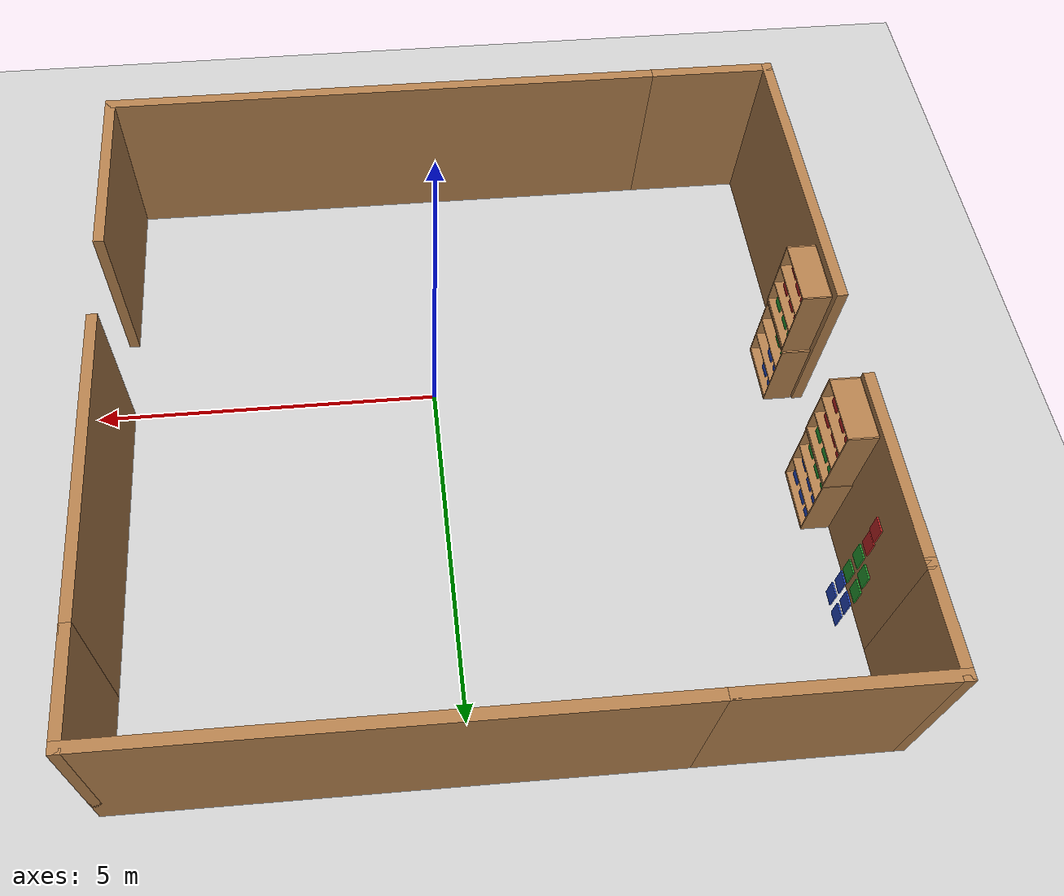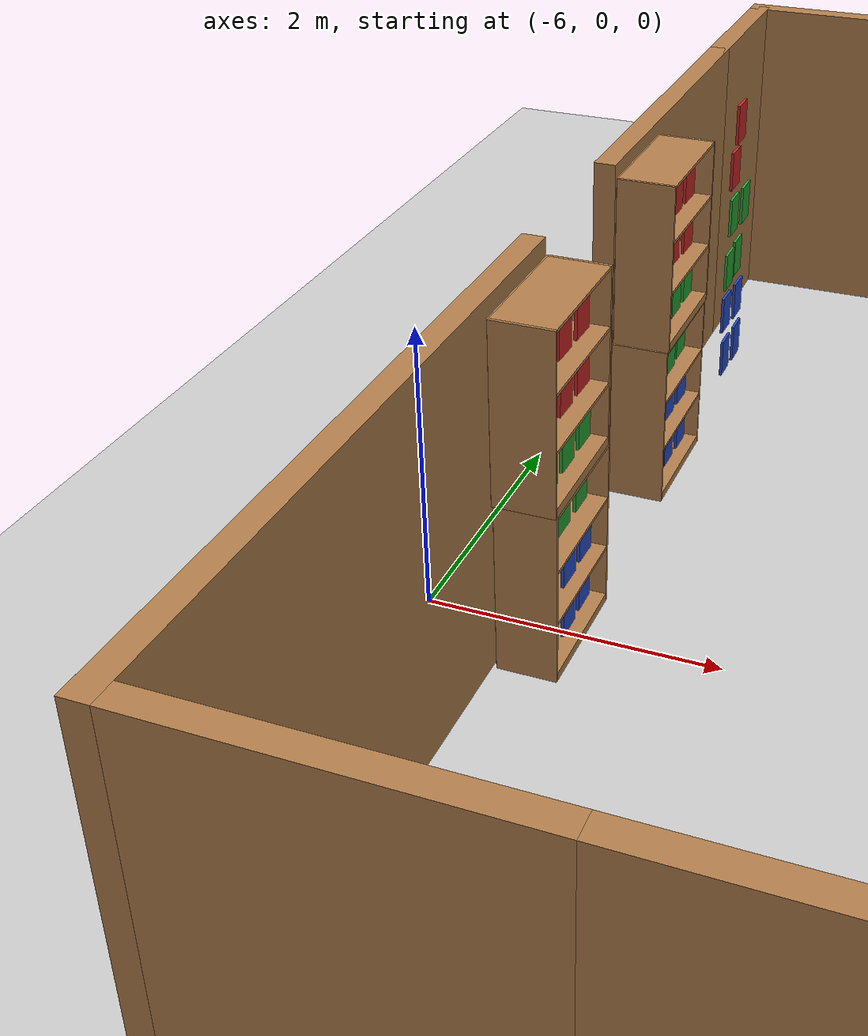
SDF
<sdf version="1.6">
 <world name="default">
  <model name="ground_plane">
   <static>1</static>
   <link name="link">
    <collision name="collision">
     <geometry><plane><normal>0 0 1</normal><size>100 100</size></plane></geometry>
     <surface><friction><ode><mu>100</mu><mu2>50</mu2></ode></friction></surface>
    </collision>
    <visual name="visual">
     <cast_shadows>0</cast_shadows>
     <geometry><plane><normal>0 0 1</normal><size>100 100</size></plane></geometry>
     <material>
      <script><uri>file://media/materials/scripts/gazebo.material</uri><name>Gazebo/Grey</name></script>
     </material>
    </visual>
   </link>
  </model>
  <model name="shopping_mart_box">
   <pose>-0.44063 0.87202 0 0 -0 0</pose>
   <link name="Wall_11">
    <collision name="Wall_11_Collision">
     <geometry><box><size>2 0.15 2.5</size></box></geometry>
     <pose>0 0 1.25 0 -0 0</pose>
    </collision>
    <visual name="Wall_11_Visual">
     <pose>0 0 1.25 0 -0 0</pose>
     <geometry><box><size>2 0.15 2.5</size></box></geometry>
     <material>
      <script><uri>file://media/materials/scripts/gazebo.material</uri><name>Gazebo/Wood</name></script>
      <ambient>1 1 1 1</ambient>
     </material>
    </visual>
    <pose>-4.05 -4.85 0 0 -0 3.14159</pose>
   </link>
   <link name="Wall_12">
    <collision name="Wall_12_Collision">
     <geometry><box><size>4.5 0.15 2.5</size></box></geometry>
     <pose>0 0 1.25 0 -0 0</pose>
    </collision>
    <visual name="Wall_12_Visual">
     <pose>0 0 1.25 0 -0 0</pose>
     <geometry><box><size>4.5 0.15 2.5</size></box></geometry>
     <material>
      <script><uri>file://media/materials/scripts/gazebo.material</uri><name>Gazebo/Wood</name></script>
      <ambient>1 1 1 1</ambient>
     </material>
    </visual>
    <pose>-4.975 -2.675 0 0 -0 1.5708</pose>
   </link>
   <link name="Wall_15">
    <collision name="Wall_15_Collision">
     <geometry><box><size>2.75 0.15 2.5</size></box></geometry>
     <pose>0 0 1.25 0 -0 0</pose>
    </collision>
    <visual name="Wall_15_Visual">
     <pose>0 0 1.25 0 -0 0</pose>
     <geometry><box><size>2.75 0.15 2.5</size></box></geometry>
     <material>
      <script><uri>file://media/materials/scripts/gazebo.material</uri><name>Gazebo/Wood</name></script>
      <ambient>1 1 1 1</ambient>
     </material>
    </visual>
    <pose>-4.975 2.2 0 0 0 -1.5708</pose>
   </link>
   <link name="Wall_17">
    <collision name="Wall_17_Collision">
     <geometry><box><size>1.5 0.15 2.5</size></box></geometry>
     <pose>0 0 1.25 0 -0 0</pose>
    </collision>
    <visual name="Wall_17_Visual">
     <pose>0 0 1.25 0 -0 0</pose>
     <geometry><box><size>1.5 0.15 2.5</size></box></geometry>
     <material>
      <script><uri>file://media/materials/scripts/gazebo.material</uri><name>Gazebo/Wood</name></script>
      <ambient>1 1 1 1</ambient>
     </material>
    </visual>
    <pose>-4.975 4.175 0 0 -0 1.5708</pose>
   </link>
   <link name="Wall_21">
    <collision name="Wall_21_Collision">
     <geometry><box><size>2.75 0.15 2.5</size></box></geometry>
     <pose>0 0 1.25 0 -0 0</pose>
    </collision>
    <visual name="Wall_21_Visual">
     <pose>0 0 1.25 0 -0 0</pose>
     <geometry><box><size>2.75 0.15 2.5</size></box></geometry>
     <material>
      <script><uri>file://media/materials/scripts/gazebo.material</uri><name>Gazebo/Wood</name></script>
      <ambient>1 1 1 1</ambient>
     </material>
    </visual>
    <pose>-3.675 4.85 0 0 -0 0</pose>
   </link>
   <link name="Wall_22">
    <collision name="Wall_22_Collision">
     <geometry><box><size>7.5 0.15 2.5</size></box></geometry>
     <pose>0 0 1.25 0 -0 0</pose>
    </collision>
    <visual name="Wall_22_Visual">
     <pose>0 0 1.25 0 -0 0</pose>
     <geometry><box><size>7.5 0.15 2.5</size></box></geometry>
     <material>
      <script><uri>file://media/materials/scripts/gazebo.material</uri><name>Gazebo/Wood</name></script>
      <ambient>1 1 1 1</ambient>
     </material>
    </visual>
    <pose>1.3 4.85 0 0 -0 0</pose>
   </link>
   <link name="Wall_23">
    <collision name="Wall_23_Collision">
     <geometry><box><size>1.5 0.15 2.5</size></box></geometry>
     <pose>0 0 1.25 0 -0 0</pose>
    </collision>
    <visual name="Wall_23_Visual">
     <pose>0 0 1.25 0 -0 0</pose>
     <geometry><box><size>1.5 0.15 2.5</size></box></geometry>
     <material>
      <script><uri>file://media/materials/scripts/gazebo.material</uri><name>Gazebo/Wood</name></script>
      <ambient>1 1 1 1</ambient>
     </material>
    </visual>
    <pose>4.975 4.175 0 0 0 -1.5708</pose>
   </link>
   <link name="Wall_29">
    <collision name="Wall_29_Collision">
     <geometry><box><size>4.5 0.15 2.5</size></box></geometry>
     <pose>0 0 1.25 0 -0 0</pose>
    </collision>
    <visual name="Wall_29_Visual">
     <pose>0 0 1.25 0 -0 0</pose>
     <geometry><box><size>4.5 0.15 2.5</size></box></geometry>
     <material>
      <script><uri>file://media/materials/scripts/gazebo.material</uri><name>Gazebo/Wood</name></script>
      <ambient>1 1 1 1</ambient>
     </material>
    </visual>
    <pose>4.975 1.325 0 0 0 -1.5708</pose>
   </link>
   <link name="Wall_31">
    <collision name="Wall_31_Collision">
     <geometry><box><size>2.75 0.15 2.5</size></box></geometry>
     <pose>0 0 1.25 0 -0 0</pose>
    </collision>
    <visual name="Wall_31_Visual">
     <pose>0 0 1.25 0 -0 0</pose>
     <geometry><box><size>2.75 0.15 2.5</size></box></geometry>
     <material>
      <script><uri>file://media/materials/scripts/gazebo.material</uri><name>Gazebo/Wood</name></script>
      <ambient>1 1 1 1</ambient>
     </material>
    </visual>
    <pose>4.975 -3.55 0 0 -0 1.5708</pose>
   </link>
   <link name="Wall_6">
    <collision name="Wall_6_Collision">
     <geometry><box><size>8.25 0.15 2.5</size></box></geometry>
     <pose>0 0 1.25 0 -0 0</pose>
    </collision>
    <visual name="Wall_6_Visual">
     <pose>0 0 1.25 0 -0 0</pose>
     <geometry><box><size>8.25 0.15 2.5</size></box></geometry>
     <material>
      <script><uri>file://media/materials/scripts/gazebo.material</uri><name>Gazebo/Wood</name></script>
      <ambient>1 1 1 1</ambient>
     </material>
    </visual>
    <pose>0.925 -4.85 0 0 -0 0</pose>
   </link>
   <static>1</static>
  </model>
  <model name="bookshelf_0_clone_0">
   <static>1</static>
   <link name="link">
    <inertial><mass>1</mass></inertial>
    <collision name="back">
     <pose>0 0.005 0.6 0 -0 0</pose>
     <geometry><box><size>0.9 0.01 1.2</size></box></geometry>
    </collision>
    <visual name="visual1">
     <pose>0 0.005 0.6 0 -0 0</pose>
     <geometry><box><size>0.9 0.01 1.2</size></box></geometry>
     <material>
      <script><uri>file://media/materials/scripts/gazebo.material</uri><name>Gazebo/Wood</name></script>
     </material>
    </visual>
    <collision name="left_side">
     <pose>0.45 -0.195 0.6 0 -0 0</pose>
     <geometry><box><size>0.02 0.4 1.2</size></box></geometry>
    </collision>
    <visual name="visual2">
     <pose>0.45 -0.195 0.6 0 -0 0</pose>
     <geometry><box><size>0.02 0.4 1.2</size></box></geometry>
     <material>
      <script><uri>file://media/materials/scripts/gazebo.material</uri><name>Gazebo/Wood</name></script>
     </material>
    </visual>
    <collision name="right_side">
     <pose>-0.45 -0.195 0.6 0 -0 0</pose>
     <geometry><box><size>0.02 0.4 1.2</size></box></geometry>
    </collision>
    <visual name="visual3">
     <pose>-0.45 -0.195 0.6 0 -0 0</pose>
     <geometry><box><size>0.02 0.4 1.2</size></box></geometry>
     <material>
      <script><uri>file://media/materials/scripts/gazebo.material</uri><name>Gazebo/Wood</name></script>
     </material>
    </visual>
    <collision name="bottom">
     <pose>0 -0.195 0.03 0 -0 0</pose>
     <geometry><box><size>0.88 0.4 0.06</size></box></geometry>
    </collision>
    <visual name="visual4">
     <pose>0 -0.195 0.03 0 -0 0</pose>
     <geometry><box><size>0.88 0.4 0.06</size></box></geometry>
     <material>
      <script><uri>file://media/materials/scripts/gazebo.material</uri><name>Gazebo/Wood</name></script>
     </material>
    </visual>
    <collision name="top">
     <pose>0 -0.195 1.19 0 -0 0</pose>
     <geometry><box><size>0.88 0.4 0.02</size></box></geometry>
    </collision>
    <visual name="visual5">
     <pose>0 -0.195 1.19 0 -0 0</pose>
     <geometry><box><size>0.88 0.4 0.02</size></box></geometry>
     <material>
      <script><uri>file://media/materials/scripts/gazebo.material</uri><name>Gazebo/Wood</name></script>
     </material>
    </visual>
    <collision name="low_shelf">
     <pose>0 -0.195 0.43 0 -0 0</pose>
     <geometry><box><size>0.88 0.4 0.02</size></box></geometry>
    </collision>
    <visual name="visual6">
     <pose>0 -0.195 0.43 0 -0 0</pose>
     <geometry><box><size>0.88 0.4 0.02</size></box></geometry>
     <material>
      <script><uri>file://media/materials/scripts/gazebo.material</uri><name>Gazebo/Wood</name></script>
     </material>
    </visual>
    <collision name="high_shelf">
     <pose>0 -0.195 0.8 0 -0 0</pose>
     <geometry><box><size>0.88 0.4 0.02</size></box></geometry>
    </collision>
    <visual name="visual7">
     <pose>0 -0.195 0.8 0 -0 0</pose>
     <geometry><box><size>0.88 0.4 0.02</size></box></geometry>
     <material>
      <script><uri>file://media/materials/scripts/gazebo.material</uri><name>Gazebo/Wood</name></script>
     </material>
    </visual>
   </link>
   <pose>-5.30935 -0.025093 0 0 -0 1.5697</pose>
  </model>
  <model name="bookshelf_0_clone_0_clone">
   <static>1</static>
   <link name="link">
    <inertial><mass>1</mass></inertial>
    <collision name="back">
     <pose>0 0.005 0.6 0 -0 0</pose>
     <geometry><box><size>0.9 0.01 1.2</size></box></geometry>
    </collision>
    <visual name="visual1">
     <pose>0 0.005 0.6 0 -0 0</pose>
     <geometry><box><size>0.9 0.01 1.2</size></box></geometry>
     <material>
      <script><uri>file://media/materials/scripts/gazebo.material</uri><name>Gazebo/Wood</name></script>
     </material>
    </visual>
    <collision name="left_side">
     <pose>0.45 -0.195 0.6 0 -0 0</pose>
     <geometry><box><size>0.02 0.4 1.2</size></box></geometry>
    </collision>
    <visual name="visual2">
     <pose>0.45 -0.195 0.6 0 -0 0</pose>
     <geometry><box><size>0.02 0.4 1.2</size></box></geometry>
     <material>
      <script><uri>file://media/materials/scripts/gazebo.material</uri><name>Gazebo/Wood</name></script>
     </material>
    </visual>
    <collision name="right_side">
     <pose>-0.45 -0.195 0.6 0 -0 0</pose>
     <geometry><box><size>0.02 0.4 1.2</size></box></geometry>
    </collision>
    <visual name="visual3">
     <pose>-0.45 -0.195 0.6 0 -0 0</pose>
     <geometry><box><size>0.02 0.4 1.2</size></box></geometry>
     <material>
      <script><uri>file://media/materials/scripts/gazebo.material</uri><name>Gazebo/Wood</name></script>
     </material>
    </visual>
    <collision name="bottom">
     <pose>0 -0.195 0.03 0 -0 0</pose>
     <geometry><box><size>0.88 0.4 0.06</size></box></geometry>
    </collision>
    <visual name="visual4">
     <pose>0 -0.195 0.03 0 -0 0</pose>
     <geometry><box><size>0.88 0.4 0.06</size></box></geometry>
     <material>
      <script><uri>file://media/materials/scripts/gazebo.material</uri><name>Gazebo/Wood</name></script>
     </material>
    </visual>
    <collision name="top">
     <pose>0 -0.195 1.19 0 -0 0</pose>
     <geometry><box><size>0.88 0.4 0.02</size></box></geometry>
    </collision>
    <visual name="visual5">
     <pose>0 -0.195 1.19 0 -0 0</pose>
     <geometry><box><size>0.88 0.4 0.02</size></box></geometry>
     <material>
      <script><uri>file://media/materials/scripts/gazebo.material</uri><name>Gazebo/Wood</name></script>
     </material>
    </visual>
    <collision name="low_shelf">
     <pose>0 -0.195 0.43 0 -0 0</pose>
     <geometry><box><size>0.88 0.4 0.02</size></box></geometry>
    </collision>
    <visual name="visual6">
     <pose>0 -0.195 0.43 0 -0 0</pose>
     <geometry><box><size>0.88 0.4 0.02</size></box></geometry>
     <material>
      <script><uri>file://media/materials/scripts/gazebo.material</uri><name>Gazebo/Wood</name></script>
     </material>
    </visual>
    <collision name="high_shelf">
     <pose>0 -0.195 0.8 0 -0 0</pose>
     <geometry><box><size>0.88 0.4 0.02</size></box></geometry>
    </collision>
    <visual name="visual7">
     <pose>0 -0.195 0.8 0 -0 0</pose>
     <geometry><box><size>0.88 0.4 0.02</size></box></geometry>
     <material>
      <script><uri>file://media/materials/scripts/gazebo.material</uri><name>Gazebo/Wood</name></script>
     </material>
    </visual>
   </link>
   <pose>-5.33454 2.15943 0 0 -0 1.5697</pose>
  </model>
  <model name="bookshelf_0_clone_0_clone_1_clone_0">
   <static>1</static>
   <link name="link">
    <inertial><mass>1</mass></inertial>
    <collision name="back">
     <pose>0 0.005 0.6 0 -0 0</pose>
     <geometry><box><size>0.9 0.01 1.2</size></box></geometry>
    </collision>
    <visual name="visual1">
     <pose>0 0.005 0.6 0 -0 0</pose>
     <geometry><box><size>0.9 0.01 1.2</size></box></geometry>
     <material>
      <script><uri>file://media/materials/scripts/gazebo.material</uri><name>Gazebo/Wood</name></script>
     </material>
    </visual>
    <collision name="left_side">
     <pose>0.45 -0.195 0.6 0 -0 0</pose>
     <geometry><box><size>0.02 0.4 1.2</size></box></geometry>
    </collision>
    <visual name="visual2">
     <pose>0.45 -0.195 0.6 0 -0 0</pose>
     <geometry><box><size>0.02 0.4 1.2</size></box></geometry>
     <material>
      <script><uri>file://media/materials/scripts/gazebo.material</uri><name>Gazebo/Wood</name></script>
     </material>
    </visual>
    <collision name="right_side">
     <pose>-0.45 -0.195 0.6 0 -0 0</pose>
     <geometry><box><size>0.02 0.4 1.2</size></box></geometry>
    </collision>
    <visual name="visual3">
     <pose>-0.45 -0.195 0.6 0 -0 0</pose>
     <geometry><box><size>0.02 0.4 1.2</size></box></geometry>
     <material>
      <script><uri>file://media/materials/scripts/gazebo.material</uri><name>Gazebo/Wood</name></script>
     </material>
    </visual>
    <collision name="bottom">
     <pose>0 -0.195 0.03 0 -0 0</pose>
     <geometry><box><size>0.88 0.4 0.06</size></box></geometry>
    </collision>
    <visual name="visual4">
     <pose>0 -0.195 0.03 0 -0 0</pose>
     <geometry><box><size>0.88 0.4 0.06</size></box></geometry>
     <material>
      <script><uri>file://media/materials/scripts/gazebo.material</uri><name>Gazebo/Wood</name></script>
     </material>
    </visual>
    <collision name="top">
     <pose>0 -0.195 1.19 0 -0 0</pose>
     <geometry><box><size>0.88 0.4 0.02</size></box></geometry>
    </collision>
    <visual name="visual5">
     <pose>0 -0.195 1.19 0 -0 0</pose>
     <geometry><box><size>0.88 0.4 0.02</size></box></geometry>
     <material>
      <script><uri>file://media/materials/scripts/gazebo.material</uri><name>Gazebo/Wood</name></script>
     </material>
    </visual>
    <collision name="low_shelf">
     <pose>0 -0.195 0.43 0 -0 0</pose>
     <geometry><box><size>0.88 0.4 0.02</size></box></geometry>
    </collision>
    <visual name="visual6">
     <pose>0 -0.195 0.43 0 -0 0</pose>
     <geometry><box><size>0.88 0.4 0.02</size></box></geometry>
     <material>
      <script><uri>file://media/materials/scripts/gazebo.material</uri><name>Gazebo/Wood</name></script>
     </material>
    </visual>
    <collision name="high_shelf">
     <pose>0 -0.195 0.8 0 -0 0</pose>
     <geometry><box><size>0.88 0.4 0.02</size></box></geometry>
    </collision>
    <visual name="visual7">
     <pose>0 -0.195 0.8 0 -0 0</pose>
     <geometry><box><size>0.88 0.4 0.02</size></box></geometry>
     <material>
      <script><uri>file://media/materials/scripts/gazebo.material</uri><name>Gazebo/Wood</name></script>
     </material>
    </visual>
   </link>
   <pose>-5.32334 2.15341 1.21067 0 -0 1.5697</pose>
  </model>
  <model name="bookshelf_0_clone_0_clone_1_clone_0_clone">
   <static>1</static>
   <link name="link">
    <inertial><mass>1</mass></inertial>
    <collision name="back">
     <pose>0 0.005 0.6 0 -0 0</pose>
     <geometry><box><size>0.9 0.01 1.2</size></box></geometry>
    </collision>
    <visual name="visual1">
     <pose>0 0.005 0.6 0 -0 0</pose>
     <geometry><box><size>0.9 0.01 1.2</size></box></geometry>
     <material>
      <script><uri>file://media/materials/scripts/gazebo.material</uri><name>Gazebo/Wood</name></script>
     </material>
    </visual>
    <collision name="left_side">
     <pose>0.45 -0.195 0.6 0 -0 0</pose>
     <geometry><box><size>0.02 0.4 1.2</size></box></geometry>
    </collision>
    <visual name="visual2">
     <pose>0.45 -0.195 0.6 0 -0 0</pose>
     <geometry><box><size>0.02 0.4 1.2</size></box></geometry>
     <material>
      <script><uri>file://media/materials/scripts/gazebo.material</uri><name>Gazebo/Wood</name></script>
     </material>
    </visual>
    <collision name="right_side">
     <pose>-0.45 -0.195 0.6 0 -0 0</pose>
     <geometry><box><size>0.02 0.4 1.2</size></box></geometry>
    </collision>
    <visual name="visual3">
     <pose>-0.45 -0.195 0.6 0 -0 0</pose>
     <geometry><box><size>0.02 0.4 1.2</size></box></geometry>
     <material>
      <script><uri>file://media/materials/scripts/gazebo.material</uri><name>Gazebo/Wood</name></script>
     </material>
    </visual>
    <collision name="bottom">
     <pose>0 -0.195 0.03 0 -0 0</pose>
     <geometry><box><size>0.88 0.4 0.06</size></box></geometry>
    </collision>
    <visual name="visual4">
     <pose>0 -0.195 0.03 0 -0 0</pose>
     <geometry><box><size>0.88 0.4 0.06</size></box></geometry>
     <material>
      <script><uri>file://media/materials/scripts/gazebo.material</uri><name>Gazebo/Wood</name></script>
     </material>
    </visual>
    <collision name="top">
     <pose>0 -0.195 1.19 0 -0 0</pose>
     <geometry><box><size>0.88 0.4 0.02</size></box></geometry>
    </collision>
    <visual name="visual5">
     <pose>0 -0.195 1.19 0 -0 0</pose>
     <geometry><box><size>0.88 0.4 0.02</size></box></geometry>
     <material>
      <script><uri>file://media/materials/scripts/gazebo.material</uri><name>Gazebo/Wood</name></script>
     </material>
    </visual>
    <collision name="low_shelf">
     <pose>0 -0.195 0.43 0 -0 0</pose>
     <geometry><box><size>0.88 0.4 0.02</size></box></geometry>
    </collision>
    <visual name="visual6">
     <pose>0 -0.195 0.43 0 -0 0</pose>
     <geometry><box><size>0.88 0.4 0.02</size></box></geometry>
     <material>
      <script><uri>file://media/materials/scripts/gazebo.material</uri><name>Gazebo/Wood</name></script>
     </material>
    </visual>
    <collision name="high_shelf">
     <pose>0 -0.195 0.8 0 -0 0</pose>
     <geometry><box><size>0.88 0.4 0.02</size></box></geometry>
    </collision>
    <visual name="visual7">
     <pose>0 -0.195 0.8 0 -0 0</pose>
     <geometry><box><size>0.88 0.4 0.02</size></box></geometry>
     <material>
      <script><uri>file://media/materials/scripts/gazebo.material</uri><name>Gazebo/Wood</name></script>
     </material>
    </visual>
   </link>
   <pose>-5.30537 -0.057137 1.21067 0 -0 1.5697</pose>
  </model>
  <model name="bluecube_0_clone_clone_9_clone_11_clone_clone_13">
   <static>1</static>
   <link name="link">
    <pose>0 0 0.21 0 -0 0</pose>
    <collision name="collision"><geometry><box><size>0.2 0.02 0.3</size></box></geometry></collision>
    <visual name="visual">
     <geometry><box><size>0.2 0.02 0.3</size></box></geometry>
     <material>
      <script><uri>file://media/materials/scripts/gazebo.material</uri><name>Gazebo/Blue</name></script>
     </material>
    </visual>
   </link>
   <pose>-5.01812 -0.019743 0 0 -0 1.57146</pose>
  </model>
  <model name="bluecube_0_clone_clone_9_clone_11_clone_clone_14">
   <static>1</static>
   <link name="link">
    <pose>0 0 0.21 0 -0 0</pose>
    <collision name="collision"><geometry><box><size>0.2 0.02 0.3</size></box></geometry></collision>
    <visual name="visual">
     <geometry><box><size>0.2 0.02 0.3</size></box></geometry>
     <material>
      <script><uri>file://media/materials/scripts/gazebo.material</uri><name>Gazebo/Blue</name></script>
     </material>
    </visual>
   </link>
   <pose>-5.0247 0.276606 0 0 -0 1.57146</pose>
  </model>
  <model name="bluecube_0_clone_clone_9_clone_11_clone_clone_15">
   <static>1</static>
   <link name="link">
    <pose>0 0 0.21 0 -0 0</pose>
    <collision name="collision"><geometry><box><size>0.2 0.02 0.3</size></box></geometry></collision>
    <visual name="visual">
     <geometry><box><size>0.2 0.02 0.3</size></box></geometry>
     <material>
      <script><uri>file://media/materials/scripts/gazebo.material</uri><name>Gazebo/Blue</name></script>
     </material>
    </visual>
   </link>
   <pose>-5.03969 1.85817 0 0 -0 1.57146</pose>
  </model>
  <model name="bluecube_0_clone_clone_9_clone_11_clone_clone_16">
   <static>1</static>
   <link name="link">
    <pose>0 0 0.21 0 -0 0</pose>
    <collision name="collision"><geometry><box><size>0.2 0.02 0.3</size></box></geometry></collision>
    <visual name="visual">
     <geometry><box><size>0.2 0.02 0.3</size></box></geometry>
     <material>
      <script><uri>file://media/materials/scripts/gazebo.material</uri><name>Gazebo/Blue</name></script>
     </material>
    </visual>
   </link>
   <pose>-5.04505 2.16746 0 0 -0 1.57146</pose>
  </model>
  <model name="bluecube_0_clone_clone_9_clone_11_clone_clone_17">
   <static>1</static>
   <link name="link">
    <pose>0 0 0.21 0 -0 0</pose>
    <collision name="collision"><geometry><box><size>0.2 0.02 0.3</size></box></geometry></collision>
    <visual name="visual">
     <geometry><box><size>0.2 0.02 0.3</size></box></geometry>
     <material>
      <script><uri>file://media/materials/scripts/gazebo.material</uri><name>Gazebo/Blue</name></script>
     </material>
    </visual>
   </link>
   <pose>-5.04087 2.45195 0 0 -0 1.57146</pose>
  </model>
  <model name="bluecube_0_clone_clone_9_clone_11_clone_clone_18">
   <static>1</static>
   <link name="link">
    <pose>0 0 0.21 0 -0 0</pose>
    <collision name="collision"><geometry><box><size>0.2 0.02 0.3</size></box></geometry></collision>
    <visual name="visual">
     <geometry><box><size>0.2 0.02 0.3</size></box></geometry>
     <material>
      <script><uri>file://media/materials/scripts/gazebo.material</uri><name>Gazebo/Blue</name></script>
     </material>
    </visual>
   </link>
   <pose>-5.03935 3.70712 0 0 -0 1.57146</pose>
  </model>
  <model name="bluecube_0_clone_clone_9_clone_11_clone_clone_19">
   <static>1</static>
   <link name="link">
    <pose>0 0 0.21 0 -0 0</pose>
    <collision name="collision"><geometry><box><size>0.2 0.02 0.3</size></box></geometry></collision>
    <visual name="visual">
     <geometry><box><size>0.2 0.02 0.3</size></box></geometry>
     <material>
      <script><uri>file://media/materials/scripts/gazebo.material</uri><name>Gazebo/Blue</name></script>
     </material>
    </visual>
   </link>
   <pose>-5.0324 4.00447 0 0 -0 1.57146</pose>
  </model>
  <model name="bluecube_0_clone_clone_10_clone_clone_21_clone_clone_14">
   <static>1</static>
   <link name="link">
    <pose>0 0 0.21 0 -0 0</pose>
    <collision name="collision"><geometry><box><size>0.2 0.02 0.3</size></box></geometry></collision>
    <visual name="visual">
     <geometry><box><size>0.2 0.02 0.3</size></box></geometry>
     <material>
      <script><uri>file://media/materials/scripts/gazebo.material</uri><name>Gazebo/Blue</name></script>
     </material>
    </visual>
   </link>
   <pose>-5.01572 -0.022283 0.38097 0 -0 1.5507</pose>
  </model>
  <model name="bluecube_0_clone_clone_10_clone_clone_21_clone_clone_15">
   <static>1</static>
   <link name="link">
    <pose>0 0 0.21 0 -0 0</pose>
    <collision name="collision"><geometry><box><size>0.2 0.02 0.3</size></box></geometry></collision>
    <visual name="visual">
     <geometry><box><size>0.2 0.02 0.3</size></box></geometry>
     <material>
      <script><uri>file://media/materials/scripts/gazebo.material</uri><name>Gazebo/Blue</name></script>
     </material>
    </visual>
   </link>
   <pose>-5.01957 0.273785 0.38097 0 -0 1.5507</pose>
  </model>
  <model name="bluecube_0_clone_clone_10_clone_clone_21_clone_clone_16">
   <static>1</static>
   <link name="link">
    <pose>0 0 0.21 0 -0 0</pose>
    <collision name="collision"><geometry><box><size>0.2 0.02 0.3</size></box></geometry></collision>
    <visual name="visual">
     <geometry><box><size>0.2 0.02 0.3</size></box></geometry>
     <material>
      <script><uri>file://media/materials/scripts/gazebo.material</uri><name>Gazebo/Blue</name></script>
     </material>
    </visual>
   </link>
   <pose>-5.06971 1.85784 0.38097 0 -0 1.5507</pose>
  </model>
  <model name="bluecube_0_clone_clone_10_clone_clone_21_clone_clone_17">
   <static>1</static>
   <link name="link">
    <pose>0 0 0.21 0 -0 0</pose>
    <collision name="collision"><geometry><box><size>0.2 0.02 0.3</size></box></geometry></collision>
    <visual name="visual">
     <geometry><box><size>0.2 0.02 0.3</size></box></geometry>
     <material>
      <script><uri>file://media/materials/scripts/gazebo.material</uri><name>Gazebo/Blue</name></script>
     </material>
    </visual>
   </link>
   <pose>-5.05351 2.17009 0.38097 0 -0 1.5507</pose>
  </model>
  <model name="bluecube_0_clone_clone_10_clone_clone_21_clone_clone_18">
   <static>1</static>
   <link name="link">
    <pose>0 0 0.21 0 -0 0</pose>
    <collision name="collision"><geometry><box><size>0.2 0.02 0.3</size></box></geometry></collision>
    <visual name="visual">
     <geometry><box><size>0.2 0.02 0.3</size></box></geometry>
     <material>
      <script><uri>file://media/materials/scripts/gazebo.material</uri><name>Gazebo/Blue</name></script>
     </material>
    </visual>
   </link>
   <pose>-5.04918 2.45238 0.38097 0 -0 1.5507</pose>
  </model>
  <model name="bluecube_0_clone_clone_10_clone_clone_21_clone_clone_19">
   <static>1</static>
   <link name="link">
    <pose>0 0 0.21 0 -0 0</pose>
    <collision name="collision"><geometry><box><size>0.2 0.02 0.3</size></box></geometry></collision>
    <visual name="visual">
     <geometry><box><size>0.2 0.02 0.3</size></box></geometry>
     <material>
      <script><uri>file://media/materials/scripts/gazebo.material</uri><name>Gazebo/Blue</name></script>
     </material>
    </visual>
   </link>
   <pose>-5.0527 3.71226 0.38097 0 -0 1.5507</pose>
  </model>
  <model name="bluecube_0_clone_clone_10_clone_clone_21_clone_clone_20">
   <static>1</static>
   <link name="link">
    <pose>0 0 0.21 0 -0 0</pose>
    <collision name="collision"><geometry><box><size>0.2 0.02 0.3</size></box></geometry></collision>
    <visual name="visual">
     <geometry><box><size>0.2 0.02 0.3</size></box></geometry>
     <material>
      <script><uri>file://media/materials/scripts/gazebo.material</uri><name>Gazebo/Blue</name></script>
     </material>
    </visual>
   </link>
   <pose>-5.04038 4.00419 0.38097 0 -0 1.5507</pose>
  </model>
  <model name="greencube_clone_clone_22_clone_clone_14">
   <static>1</static>
   <link name="link">
    <pose>0 0 0.21 0 -0 0</pose>
    <collision name="collision"><geometry><box><size>0.2 0.02 0.3</size></box></geometry></collision>
    <visual name="visual">
     <geometry><box><size>0.2 0.02 0.3</size></box></geometry>
     <material>
      <script><uri>file://media/materials/scripts/gazebo.material</uri><name>Gazebo/Green</name></script>
     </material>
    </visual>
   </link>
   <pose>-5.05043 -0.024814 0.751098 0 -0 1.56837</pose>
  </model>
  <model name="greencube_clone_clone_22_clone_clone_15">
   <static>1</static>
   <link name="link">
    <pose>0 0 0.21 0 -0 0</pose>
    <collision name="collision"><geometry><box><size>0.2 0.02 0.3</size></box></geometry></collision>
    <visual name="visual">
     <geometry><box><size>0.2 0.02 0.3</size></box></geometry>
     <material>
      <script><uri>file://media/materials/scripts/gazebo.material</uri><name>Gazebo/Green</name></script>
     </material>
    </visual>
   </link>
   <pose>-5.05044 0.274786 0.751098 0 -0 1.56837</pose>
  </model>
  <model name="greencube_clone_clone_22_clone_clone_16">
   <static>1</static>
   <link name="link">
    <pose>0 0 0.21 0 -0 0</pose>
    <collision name="collision"><geometry><box><size>0.2 0.02 0.3</size></box></geometry></collision>
    <visual name="visual">
     <geometry><box><size>0.2 0.02 0.3</size></box></geometry>
     <material>
      <script><uri>file://media/materials/scripts/gazebo.material</uri><name>Gazebo/Green</name></script>
     </material>
    </visual>
   </link>
   <pose>-5.06553 1.86657 0.751098 0 -0 1.56837</pose>
  </model>
  <model name="greencube_clone_clone_22_clone_clone_17">
   <static>1</static>
   <link name="link">
    <pose>0 0 0.21 0 -0 0</pose>
    <collision name="collision"><geometry><box><size>0.2 0.02 0.3</size></box></geometry></collision>
    <visual name="visual">
     <geometry><box><size>0.2 0.02 0.3</size></box></geometry>
     <material>
      <script><uri>file://media/materials/scripts/gazebo.material</uri><name>Gazebo/Green</name></script>
     </material>
    </visual>
   </link>
   <pose>-5.0607 2.17603 0.751098 0 -0 1.56837</pose>
  </model>
  <model name="greencube_clone_clone_22_clone_clone_18">
   <static>1</static>
   <link name="link">
    <pose>0 0 0.21 0 -0 0</pose>
    <collision name="collision"><geometry><box><size>0.2 0.02 0.3</size></box></geometry></collision>
    <visual name="visual">
     <geometry><box><size>0.2 0.02 0.3</size></box></geometry>
     <material>
      <script><uri>file://media/materials/scripts/gazebo.material</uri><name>Gazebo/Green</name></script>
     </material>
    </visual>
   </link>
   <pose>-5.07307 2.4594 0.751098 0 -0 1.56837</pose>
  </model>
  <model name="greencube_clone_clone_22_clone_clone_19">
   <static>1</static>
   <link name="link">
    <pose>0 0 0.21 0 -0 0</pose>
    <collision name="collision"><geometry><box><size>0.2 0.02 0.3</size></box></geometry></collision>
    <visual name="visual">
     <geometry><box><size>0.2 0.02 0.3</size></box></geometry>
     <material>
      <script><uri>file://media/materials/scripts/gazebo.material</uri><name>Gazebo/Green</name></script>
     </material>
    </visual>
   </link>
   <pose>-5.05193 3.72555 0.751098 0 -0 1.56837</pose>
  </model>
  <model name="greencube_clone_clone_22_clone_clone_20">
   <static>1</static>
   <link name="link">
    <pose>0 0 0.21 0 -0 0</pose>
    <collision name="collision"><geometry><box><size>0.2 0.02 0.3</size></box></geometry></collision>
    <visual name="visual">
     <geometry><box><size>0.2 0.02 0.3</size></box></geometry>
     <material>
      <script><uri>file://media/materials/scripts/gazebo.material</uri><name>Gazebo/Green</name></script>
     </material>
    </visual>
   </link>
   <pose>-5.06537 4.00727 0.751098 0 -0 1.56837</pose>
  </model>
  <model name="greencube_clone_clone_22_clone_clone_10_clone_clone_clone_1">
   <static>1</static>
   <link name="link">
    <pose>0 0 0.21 0 -0 0</pose>
    <collision name="collision"><geometry><box><size>0.2 0.02 0.3</size></box></geometry></collision>
    <visual name="visual">
     <geometry><box><size>0.2 0.02 0.3</size></box></geometry>
     <material>
      <script><uri>file://media/materials/scripts/gazebo.material</uri><name>Gazebo/Green</name></script>
     </material>
    </visual>
   </link>
   <pose>-5.01706 -0.329688 1.21098 0 -0 1.56837</pose>
  </model>
  <model name="greencube_clone_clone_22_clone_clone_10_clone_clone_clone_2">
   <static>1</static>
   <link name="link">
    <pose>0 0 0.21 0 -0 0</pose>
    <collision name="collision"><geometry><box><size>0.2 0.02 0.3</size></box></geometry></collision>
    <visual name="visual">
     <geometry><box><size>0.2 0.02 0.3</size></box></geometry>
     <material>
      <script><uri>file://media/materials/scripts/gazebo.material</uri><name>Gazebo/Green</name></script>
     </material>
    </visual>
   </link>
   <pose>-5.02811 -0.020723 1.21098 0 -0 1.56837</pose>
  </model>
  <model name="greencube_clone_clone_22_clone_clone_10_clone_clone_clone_3">
   <static>1</static>
   <link name="link">
    <pose>0 0 0.21 0 -0 0</pose>
    <collision name="collision"><geometry><box><size>0.2 0.02 0.3</size></box></geometry></collision>
    <visual name="visual">
     <geometry><box><size>0.2 0.02 0.3</size></box></geometry>
     <material>
      <script><uri>file://media/materials/scripts/gazebo.material</uri><name>Gazebo/Green</name></script>
     </material>
    </visual>
   </link>
   <pose>-5.0305 0.264272 1.21098 0 -0 1.56837</pose>
  </model>
  <model name="greencube_clone_clone_22_clone_clone_10_clone_clone_clone_4">
   <static>1</static>
   <link name="link">
    <pose>0 0 0.21 0 -0 0</pose>
    <collision name="collision"><geometry><box><size>0.2 0.02 0.3</size></box></geometry></collision>
    <visual name="visual">
     <geometry><box><size>0.2 0.02 0.3</size></box></geometry>
     <material>
      <script><uri>file://media/materials/scripts/gazebo.material</uri><name>Gazebo/Green</name></script>
     </material>
    </visual>
   </link>
   <pose>-5.0376 1.89055 1.21098 0 -0 1.56837</pose>
  </model>
  <model name="greencube_clone_clone_22_clone_clone_10_clone_clone_clone_5">
   <static>1</static>
   <link name="link">
    <pose>0 0 0.21 0 -0 0</pose>
    <collision name="collision"><geometry><box><size>0.2 0.02 0.3</size></box></geometry></collision>
    <visual name="visual">
     <geometry><box><size>0.2 0.02 0.3</size></box></geometry>
     <material>
      <script><uri>file://media/materials/scripts/gazebo.material</uri><name>Gazebo/Green</name></script>
     </material>
    </visual>
   </link>
   <pose>-5.04214 2.1908 1.21098 0 -0 1.56837</pose>
  </model>
  <model name="greencube_clone_clone_22_clone_clone_10_clone_clone_clone_6">
   <static>1</static>
   <link name="link">
    <pose>0 0 0.21 0 -0 0</pose>
    <collision name="collision"><geometry><box><size>0.2 0.02 0.3</size></box></geometry></collision>
    <visual name="visual">
     <geometry><box><size>0.2 0.02 0.3</size></box></geometry>
     <material>
      <script><uri>file://media/materials/scripts/gazebo.material</uri><name>Gazebo/Green</name></script>
     </material>
    </visual>
   </link>
   <pose>-5.04495 2.47085 1.21098 0 -0 1.56837</pose>
  </model>
  <model name="greencube_clone_clone_22_clone_clone_10_clone_clone_clone_7">
   <static>1</static>
   <link name="link">
    <pose>0 0 0.21 0 -0 0</pose>
    <collision name="collision"><geometry><box><size>0.2 0.02 0.3</size></box></geometry></collision>
    <visual name="visual">
     <geometry><box><size>0.2 0.02 0.3</size></box></geometry>
     <material>
      <script><uri>file://media/materials/scripts/gazebo.material</uri><name>Gazebo/Green</name></script>
     </material>
    </visual>
   </link>
   <pose>-5.04419 3.73788 1.21098 0 -0 1.56837</pose>
  </model>
  <model name="greencube_clone_clone_22_clone_clone_10_clone_clone_clone_8">
   <static>1</static>
   <link name="link">
    <pose>0 0 0.21 0 -0 0</pose>
    <collision name="collision"><geometry><box><size>0.2 0.02 0.3</size></box></geometry></collision>
    <visual name="visual">
     <geometry><box><size>0.2 0.02 0.3</size></box></geometry>
     <material>
      <script><uri>file://media/materials/scripts/gazebo.material</uri><name>Gazebo/Green</name></script>
     </material>
    </visual>
   </link>
   <pose>-5.03056 4.01441 1.21098 0 -0 1.56837</pose>
  </model>
  <model name="redcube_clone_clone_22_clone_clone_1">
   <static>1</static>
   <link name="link">
    <pose>0 0 0.21 0 -0 0</pose>
    <collision name="collision"><geometry><box><size>0.2 0.02 0.3</size></box></geometry></collision>
    <visual name="visual">
     <geometry><box><size>0.2 0.02 0.3</size></box></geometry>
     <material>
      <script><uri>file://media/materials/scripts/gazebo.material</uri><name>Gazebo/Red</name></script>
     </material>
    </visual>
   </link>
   <pose>-5.03053 -0.326059 1.58534 0 -0 1.55372</pose>
  </model>
  <model name="redcube_clone_clone_22_clone_clone_2">
   <static>1</static>
   <link name="link">
    <pose>0 0 0.21 0 -0 0</pose>
    <collision name="collision"><geometry><box><size>0.2 0.02 0.3</size></box></geometry></collision>
    <visual name="visual">
     <geometry><box><size>0.2 0.02 0.3</size></box></geometry>
     <material>
      <script><uri>file://media/materials/scripts/gazebo.material</uri><name>Gazebo/Red</name></script>
     </material>
    </visual>
   </link>
   <pose>-5.03801 -0.031543 1.58534 0 -0 1.55372</pose>
  </model>
  <model name="redcube_clone_clone_22_clone_clone_3">
   <static>1</static>
   <link name="link">
    <pose>0 0 0.21 0 -0 0</pose>
    <collision name="collision"><geometry><box><size>0.2 0.02 0.3</size></box></geometry></collision>
    <visual name="visual">
     <geometry><box><size>0.2 0.02 0.3</size></box></geometry>
     <material>
      <script><uri>file://media/materials/scripts/gazebo.material</uri><name>Gazebo/Red</name></script>
     </material>
    </visual>
   </link>
   <pose>-5.03927 0.250241 1.58534 0 -0 1.55372</pose>
  </model>
  <model name="redcube_clone_clone_22_clone_clone_4">
   <static>1</static>
   <link name="link">
    <pose>0 0 0.21 0 -0 0</pose>
    <collision name="collision"><geometry><box><size>0.2 0.02 0.3</size></box></geometry></collision>
    <visual name="visual">
     <geometry><box><size>0.2 0.02 0.3</size></box></geometry>
     <material>
      <script><uri>file://media/materials/scripts/gazebo.material</uri><name>Gazebo/Red</name></script>
     </material>
    </visual>
   </link>
   <pose>-5.05118 1.88476 1.58534 0 -0 1.55372</pose>
  </model>
  <model name="redcube_clone_clone_22_clone_clone_5">
   <static>1</static>
   <link name="link">
    <pose>0 0 0.21 0 -0 0</pose>
    <collision name="collision"><geometry><box><size>0.2 0.02 0.3</size></box></geometry></collision>
    <visual name="visual">
     <geometry><box><size>0.2 0.02 0.3</size></box></geometry>
     <material>
      <script><uri>file://media/materials/scripts/gazebo.material</uri><name>Gazebo/Red</name></script>
     </material>
    </visual>
   </link>
   <pose>-5.06622 2.18262 1.58534 0 -0 1.55372</pose>
  </model>
  <model name="redcube_clone_clone_22_clone_clone_6">
   <static>1</static>
   <link name="link">
    <pose>0 0 0.21 0 -0 0</pose>
    <collision name="collision"><geometry><box><size>0.2 0.02 0.3</size></box></geometry></collision>
    <visual name="visual">
     <geometry><box><size>0.2 0.02 0.3</size></box></geometry>
     <material>
      <script><uri>file://media/materials/scripts/gazebo.material</uri><name>Gazebo/Red</name></script>
     </material>
    </visual>
   </link>
   <pose>-5.05412 2.45847 1.58534 0 -0 1.55372</pose>
  </model>
  <model name="redcube_clone_clone_22_clone_clone_7">
   <static>1</static>
   <link name="link">
    <pose>0 0 0.21 0 -0 0</pose>
    <collision name="collision"><geometry><box><size>0.2 0.02 0.3</size></box></geometry></collision>
    <visual name="visual">
     <geometry><box><size>0.2 0.02 0.3</size></box></geometry>
     <material>
      <script><uri>file://media/materials/scripts/gazebo.material</uri><name>Gazebo/Red</name></script>
     </material>
    </visual>
   </link>
   <pose>-5.05555 3.74344 1.58534 0 -0 1.55372</pose>
  </model>
  <model name="redcube_clone_clone_22_clone_clone_22_clone_clone_13">
   <static>1</static>
   <link name="link">
    <pose>0 0 0.21 0 -0 0</pose>
    <collision name="collision"><geometry><box><size>0.2 0.02 0.3</size></box></geometry></collision>
    <visual name="visual">
     <geometry><box><size>0.2 0.02 0.3</size></box></geometry>
     <material>
      <script><uri>file://media/materials/scripts/gazebo.material</uri><name>Gazebo/Red</name></script>
     </material>
    </visual>
   </link>
   <pose>-5.06482 -0.328233 1.95914 0 -0 1.55372</pose>
  </model>
  <model name="redcube_clone_clone_22_clone_clone_22_clone_clone_14">
   <static>1</static>
   <link name="link">
    <pose>0 0 0.21 0 -0 0</pose>
    <collision name="collision"><geometry><box><size>0.2 0.02 0.3</size></box></geometry></collision>
    <visual name="visual">
     <geometry><box><size>0.2 0.02 0.3</size></box></geometry>
     <material>
      <script><uri>file://media/materials/scripts/gazebo.material</uri><name>Gazebo/Red</name></script>
     </material>
    </visual>
   </link>
   <pose>-5.04406 -0.03926 1.95914 0 -0 1.55372</pose>
  </model>
  <model name="redcube_clone_clone_22_clone_clone_22_clone_clone_15">
   <static>1</static>
   <link name="link">
    <pose>0 0 0.21 0 -0 0</pose>
    <collision name="collision"><geometry><box><size>0.2 0.02 0.3</size></box></geometry></collision>
    <visual name="visual">
     <geometry><box><size>0.2 0.02 0.3</size></box></geometry>
     <material>
      <script><uri>file://media/materials/scripts/gazebo.material</uri><name>Gazebo/Red</name></script>
     </material>
    </visual>
   </link>
   <pose>-5.03852 0.239063 1.95914 0 -0 1.55372</pose>
  </model>
  <model name="redcube_clone_clone_22_clone_clone_22_clone_clone_16">
   <static>1</static>
   <link name="link">
    <pose>0 0 0.21 0 -0 0</pose>
    <collision name="collision"><geometry><box><size>0.2 0.02 0.3</size></box></geometry></collision>
    <visual name="visual">
     <geometry><box><size>0.2 0.02 0.3</size></box></geometry>
     <material>
      <script><uri>file://media/materials/scripts/gazebo.material</uri><name>Gazebo/Red</name></script>
     </material>
    </visual>
   </link>
   <pose>-5.05558 1.88739 1.95914 0 -0 1.55372</pose>
  </model>
  <model name="redcube_clone_clone_22_clone_clone_22_clone_clone_17">
   <static>1</static>
   <link name="link">
    <pose>0 0 0.21 0 -0 0</pose>
    <collision name="collision"><geometry><box><size>0.2 0.02 0.3</size></box></geometry></collision>
    <visual name="visual">
     <geometry><box><size>0.2 0.02 0.3</size></box></geometry>
     <material>
      <script><uri>file://media/materials/scripts/gazebo.material</uri><name>Gazebo/Red</name></script>
     </material>
    </visual>
   </link>
   <pose>-5.06242 2.1886 1.95914 0 -0 1.55372</pose>
  </model>
  <model name="redcube_clone_clone_22_clone_clone_22_clone_clone_18">
   <static>1</static>
   <link name="link">
    <pose>0 0 0.21 0 -0 0</pose>
    <collision name="collision"><geometry><box><size>0.2 0.02 0.3</size></box></geometry></collision>
    <visual name="visual">
     <geometry><box><size>0.2 0.02 0.3</size></box></geometry>
     <material>
      <script><uri>file://media/materials/scripts/gazebo.material</uri><name>Gazebo/Red</name></script>
     </material>
    </visual>
   </link>
   <pose>-5.05984 2.46991 1.95914 0 -0 1.55372</pose>
  </model>
  <model name="redcube_clone_clone_22_clone_clone_22_clone_clone_19">
   <static>1</static>
   <link name="link">
    <pose>0 0 0.21 0 -0 0</pose>
    <collision name="collision"><geometry><box><size>0.2 0.02 0.3</size></box></geometry></collision>
    <visual name="visual">
     <geometry><box><size>0.2 0.02 0.3</size></box></geometry>
     <material>
      <script><uri>file://media/materials/scripts/gazebo.material</uri><name>Gazebo/Red</name></script>
     </material>
    </visual>
   </link>
   <pose>-5.03182 3.74753 1.95914 0 -0 1.55372</pose>
  </model>
 </world>
</sdf>
